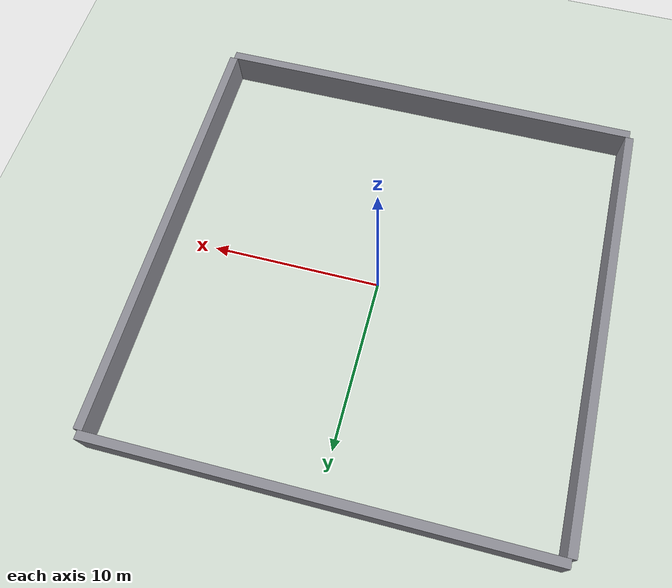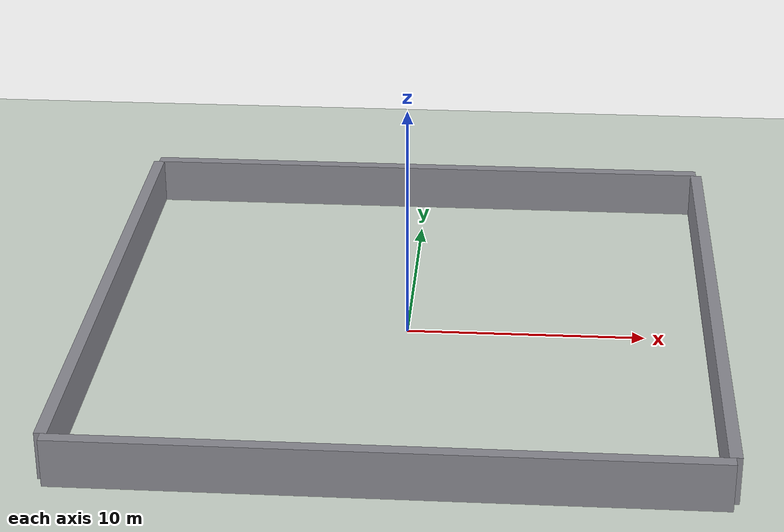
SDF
<?xml version="1.0" ?>
<sdf version="1.7">
    <world name="default">
        <plugin
            filename="libignition-gazebo-physics-system.so"
            name="ignition::gazebo::systems::Physics"></plugin>
        <plugin
            filename="libignition-gazebo-scene-broadcaster-system.so"
            name="ignition::gazebo::systems::SceneBroadcaster"></plugin>
        <plugin
            filename="libignition-gazebo-user-commands-system.so"
            name="ignition::gazebo::systems::UserCommands"></plugin>
        <plugin
            filename="libignition-gazebo-sensors-system.so"
            name="ignition::gazebo::systems::Sensors">
            <render_engine>ogre2</render_engine>
        </plugin>
        <plugin
            filename="libignition-gazebo-imu-system.so"
            name="ignition::gazebo::systems::Imu"></plugin>

        <light type="directional" name="sun">
            <cast_shadows>true</cast_shadows>
            <pose>0 0 15 0 0 0</pose>
            <diffuse>0.9 0.9 0.9 1</diffuse>
            <specular>0.3 0.3 0.3 1</specular>
            <attenuation>
                <range>1000</range>
                <constant>0.3</constant>
                <linear>0.01</linear>
                <quadratic>0.001</quadratic>
            </attenuation>
            <direction>-0.2 0.1 -0.97</direction>
        </light>

        <model name="ground_plane">
            <static>true</static>
            <link name="link">
                <collision name="collision">
                    <geometry>
                        <plane>
                            <normal>0 0 1</normal>
                            <size>25 25</size>
                        </plane>
                    </geometry>
                </collision>
                <visual name="visual">
                    <geometry>
                        <plane>
                            <normal>0 0 1</normal>
                            <size>25 25</size>
                        </plane>
                    </geometry>
                    <material>
                        <ambient>0.82 0.86 0.82 1</ambient>
                        <diffuse>0.82 0.86 0.82 1</diffuse>
                        <specular>0.15 0.15 0.15 1</specular>
                    </material>
                </visual>
            </link>
        </model>

        <model name="north_wall">
            <static>true</static>
            <pose>0 12.75 1 0 0 0</pose>
            <link name="link">
                <collision name="collision">
                    <geometry>
                        <box>
                            <size>25.5 0.5 2</size>
                        </box>
                    </geometry>
                </collision>
                <visual name="visual">
                    <geometry>
                        <box>
                            <size>25.5 0.5 2</size>
                        </box>
                    </geometry>
                    <material>
                        <ambient>0.55 0.55 0.58 1</ambient>
                        <diffuse>0.55 0.55 0.58 1</diffuse>
                        <specular>0.1 0.1 0.1 1</specular>
                    </material>
                </visual>
            </link>
        </model>

        <model name="south_wall">
            <static>true</static>
            <pose>0 -12.75 1 0 0 0</pose>
            <link name="link">
                <collision name="collision">
                    <geometry>
                        <box>
                            <size>25.5 0.5 2</size>
                        </box>
                    </geometry>
                </collision>
                <visual name="visual">
                    <geometry>
                        <box>
                            <size>25.5 0.5 2</size>
                        </box>
                    </geometry>
                    <material>
                        <ambient>0.55 0.55 0.58 1</ambient>
                        <diffuse>0.55 0.55 0.58 1</diffuse>
                        <specular>0.1 0.1 0.1 1</specular>
                    </material>
                </visual>
            </link>
        </model>

        <model name="east_wall">
            <static>true</static>
            <pose>12.75 0 1 0 0 0</pose>
            <link name="link">
                <collision name="collision">
                    <geometry>
                        <box>
                            <size>0.5 25 2</size>
                        </box>
                    </geometry>
                </collision>
                <visual name="visual">
                    <geometry>
                        <box>
                            <size>0.5 25 2</size>
                        </box>
                    </geometry>
                    <material>
                        <ambient>0.55 0.55 0.58 1</ambient>
                        <diffuse>0.55 0.55 0.58 1</diffuse>
                        <specular>0.1 0.1 0.1 1</specular>
                    </material>
                </visual>
            </link>
        </model>

        <model name="west_wall">
            <static>true</static>
            <pose>-12.75 0 1 0 0 0</pose>
            <link name="link">
                <collision name="collision">
                    <geometry>
                        <box>
                            <size>0.5 25 2</size>
                        </box>
                    </geometry>
                </collision>
                <visual name="visual">
                    <geometry>
                        <box>
                            <size>0.5 25 2</size>
                        </box>
                    </geometry>
                    <material>
                        <ambient>0.55 0.55 0.58 1</ambient>
                        <diffuse>0.55 0.55 0.58 1</diffuse>
                        <specular>0.1 0.1 0.1 1</specular>
                    </material>
                </visual>
            </link>
        </model>
    </world>
</sdf>
